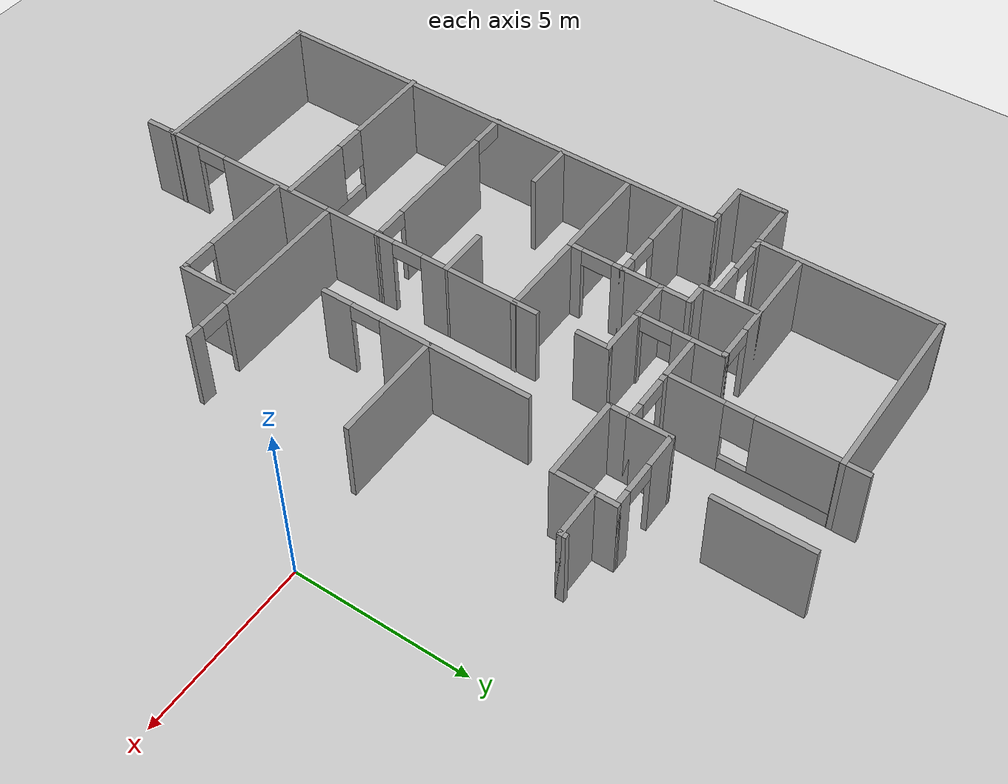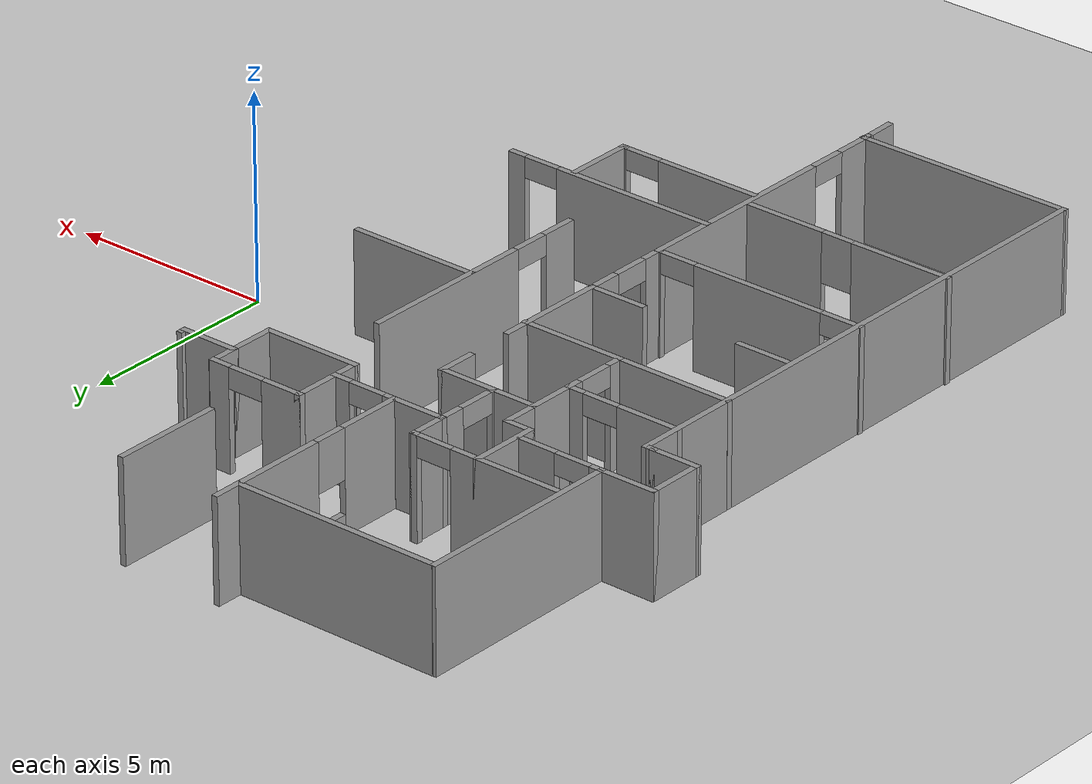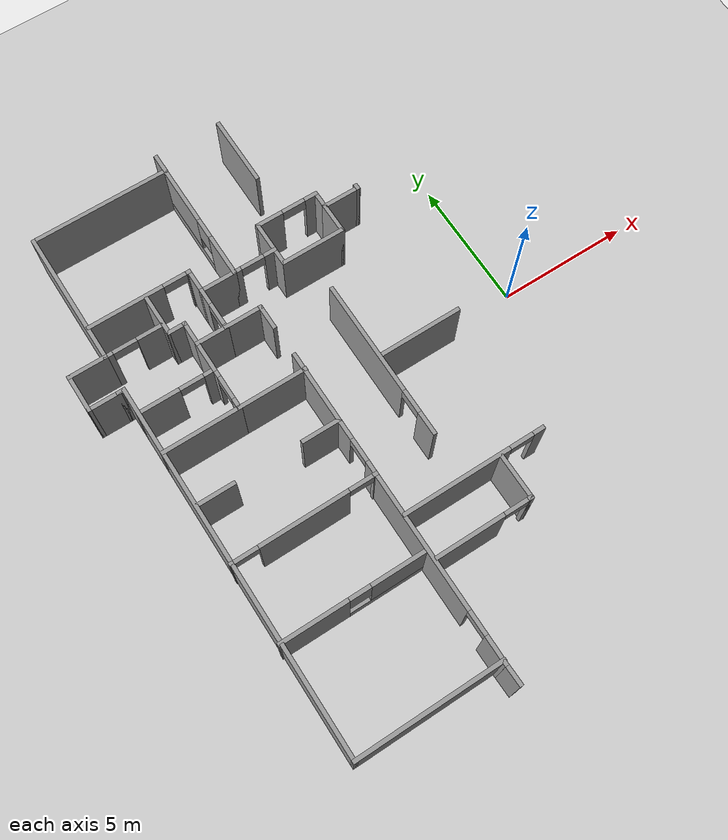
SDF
<sdf version="1.6">
 <world name="default">
  <model name="ground_plane">
   <static>1</static>
   <link name="link">
    <collision name="collision">
     <geometry><plane><normal>0 0 1</normal><size>100 100</size></plane></geometry>
     <surface><friction><ode><mu>100</mu><mu2>50</mu2></ode></friction></surface>
    </collision>
    <visual name="visual">
     <cast_shadows>0</cast_shadows>
     <geometry><plane><normal>0 0 1</normal><size>100 100</size></plane></geometry>
     <material>
      <script><uri>file://media/materials/scripts/gazebo.material</uri><name>Gazebo/Grey</name></script>
     </material>
    </visual>
   </link>
  </model>
  <model name="office02">
   <pose>-0.075105 -0.58893 0 0 -0 0</pose>
   <link name="Wall_0">
    <collision name="Wall_0_Collision">
     <geometry><box><size>5.25 0.15 2.5</size></box></geometry>
     <pose>0 0 1.25 0 -0 0</pose>
    </collision>
    <visual name="Wall_0_Visual">
     <pose>0 0 1.25 0 -0 0</pose>
     <geometry><box><size>5.25 0.15 2.5</size></box></geometry>
     <material>
      <script><uri>file://media/materials/scripts/gazebo.material</uri><name>Gazebo/Grey</name></script>
      <ambient>1 1 1 1</ambient>
     </material>
     <meta><layer>0</layer></meta>
    </visual>
    <pose>-13.3071 7.70371 0 0 -0 -1.5708</pose>
   </link>
   <link name="Wall_1">
    <collision name="Wall_1_Collision">
     <geometry><box><size>1.5 0.15 2.5</size></box></geometry>
     <pose>0 0 1.25 0 -0 0</pose>
    </collision>
    <visual name="Wall_1_Visual">
     <pose>0 0 1.25 0 -0 0</pose>
     <geometry><box><size>1.5 0.15 2.5</size></box></geometry>
     <material>
      <script><uri>file://media/materials/scripts/gazebo.material</uri><name>Gazebo/Grey</name></script>
      <ambient>1 1 1 1</ambient>
     </material>
     <meta><layer>0</layer></meta>
    </visual>
    <pose>-13.9821 5.15371 0 0 -0 3.14159</pose>
   </link>
   <link name="Wall_2">
    <collision name="Wall_2_Collision">
     <geometry><box><size>1.5 0.15 2.5</size></box></geometry>
     <pose>0 0 1.25 0 -0 0</pose>
    </collision>
    <visual name="Wall_2_Visual">
     <pose>0 0 1.25 0 -0 0</pose>
     <geometry><box><size>1.5 0.15 2.5</size></box></geometry>
     <material>
      <script><uri>file://media/materials/scripts/gazebo.material</uri><name>Gazebo/Grey</name></script>
      <ambient>1 1 1 1</ambient>
     </material>
     <meta><layer>0</layer></meta>
    </visual>
    <pose>-14.6571 4.47871 0 0 -0 -1.5708</pose>
   </link>
   <link name="Wall_21">
    <collision name="Wall_21_Collision">
     <geometry><box><size>0.801164 0.15 2.5</size></box></geometry>
     <pose>0 0 1.25 0 -0 0</pose>
    </collision>
    <visual name="Wall_21_Visual">
     <pose>0 0 1.25 0 -0 0</pose>
     <geometry><box><size>0.801164 0.15 2.5</size></box></geometry>
     <material>
      <script><uri>file://media/materials/scripts/gazebo.material</uri><name>Gazebo/Grey</name></script>
      <ambient>1 1 1 1</ambient>
     </material>
     <meta><layer>0</layer></meta>
    </visual>
    <pose>-8.11981 10.5707 0 0 -0 -1.5708</pose>
   </link>
   <link name="Wall_22">
    <collision name="Wall_22_Collision">
     <geometry><box><size>5.25 0.15 2.5</size></box></geometry>
     <pose>0 0 1.25 0 -0 0</pose>
    </collision>
    <visual name="Wall_22_Visual">
     <pose>0 0 1.25 0 -0 0</pose>
     <geometry><box><size>5.25 0.15 2.5</size></box></geometry>
     <material>
      <script><uri>file://media/materials/scripts/gazebo.material</uri><name>Gazebo/Grey</name></script>
      <ambient>1 1 1 1</ambient>
     </material>
     <meta><layer>0</layer></meta>
    </visual>
    <pose>-10.6698 10.2604 0 0 -0 3.14159</pose>
   </link>
   <link name="Wall_232">
    <pose>-7.32824 5.53282 0 0 -0 0</pose>
    <visual name="Wall_232_Visual_0">
     <pose>-0.707202 0 1.25 0 -0 0</pose>
     <geometry><box><size>0.335596 0.15 2.5</size></box></geometry>
     <material>
      <script><uri>file://media/materials/scripts/gazebo.material</uri><name>Gazebo/Grey</name></script>
      <ambient>1 1 1 1</ambient>
     </material>
     <meta><layer>0</layer></meta>
    </visual>
    <collision name="Wall_232_Collision_0">
     <geometry><box><size>0.335596 0.15 2.5</size></box></geometry>
     <pose>-0.707202 0 1.25 0 -0 0</pose>
    </collision>
    <visual name="Wall_232_Visual_1">
     <pose>0.617798 0 1.25 0 -0 0</pose>
     <geometry><box><size>0.514404 0.15 2.5</size></box></geometry>
     <material>
      <script><uri>file://media/materials/scripts/gazebo.material</uri><name>Gazebo/Grey</name></script>
      <ambient>1 1 1 1</ambient>
     </material>
     <meta><layer>0</layer></meta>
    </visual>
    <collision name="Wall_232_Collision_1">
     <geometry><box><size>0.514404 0.15 2.5</size></box></geometry>
     <pose>0.617798 0 1.25 0 -0 0</pose>
    </collision>
    <visual name="Wall_232_Visual_2">
     <pose>-0.089404 0 2.25 0 -0 0</pose>
     <geometry><box><size>0.9 0.15 0.5</size></box></geometry>
     <material>
      <script><uri>file://media/materials/scripts/gazebo.material</uri><name>Gazebo/Grey</name></script>
      <ambient>1 1 1 1</ambient>
     </material>
     <meta><layer>0</layer></meta>
    </visual>
    <collision name="Wall_232_Collision_2">
     <geometry><box><size>0.9 0.15 0.5</size></box></geometry>
     <pose>-0.089404 0 2.25 0 -0 0</pose>
    </collision>
   </link>
   <link name="Wall_233">
    <collision name="Wall_233_Collision">
     <geometry><box><size>0.75 0.15 2.5</size></box></geometry>
     <pose>0 0 1.25 0 -0 0</pose>
    </collision>
    <visual name="Wall_233_Visual">
     <pose>0 0 1.25 0 -0 0</pose>
     <geometry><box><size>0.75 0.15 2.5</size></box></geometry>
     <material>
      <script><uri>file://media/materials/scripts/gazebo.material</uri><name>Gazebo/Grey</name></script>
      <ambient>1 1 1 1</ambient>
     </material>
     <meta><layer>0</layer></meta>
    </visual>
    <pose>-6.52824 5.23282 0 0 -0 -1.5708</pose>
   </link>
   <link name="Wall_234">
    <collision name="Wall_234_Collision">
     <geometry><box><size>2.5 0.15 2.5</size></box></geometry>
     <pose>0 0 1.25 0 -0 0</pose>
    </collision>
    <visual name="Wall_234_Visual">
     <pose>0 0 1.25 0 -0 0</pose>
     <geometry><box><size>2.5 0.15 2.5</size></box></geometry>
     <material>
      <script><uri>file://media/materials/scripts/gazebo.material</uri><name>Gazebo/Grey</name></script>
      <ambient>1 1 1 1</ambient>
     </material>
     <meta><layer>0</layer></meta>
    </visual>
    <pose>-5.35324 4.93282 0 0 -0 0</pose>
   </link>
   <link name="Wall_235">
    <collision name="Wall_235_Collision">
     <geometry><box><size>1.25 0.15 2.5</size></box></geometry>
     <pose>0 0 1.25 0 -0 0</pose>
    </collision>
    <visual name="Wall_235_Visual">
     <pose>0 0 1.25 0 -0 0</pose>
     <geometry><box><size>1.25 0.15 2.5</size></box></geometry>
     <material>
      <script><uri>file://media/materials/scripts/gazebo.material</uri><name>Gazebo/Grey</name></script>
      <ambient>1 1 1 1</ambient>
     </material>
     <meta><layer>0</layer></meta>
    </visual>
    <pose>-4.17824 5.48282 0 0 -0 1.5708</pose>
   </link>
   <link name="Wall_236">
    <collision name="Wall_236_Collision">
     <geometry><box><size>1.5 0.15 2.5</size></box></geometry>
     <pose>0 0 1.25 0 -0 0</pose>
    </collision>
    <visual name="Wall_236_Visual">
     <pose>0 0 1.25 0 -0 0</pose>
     <geometry><box><size>1.5 0.15 2.5</size></box></geometry>
     <material>
      <script><uri>file://media/materials/scripts/gazebo.material</uri><name>Gazebo/Grey</name></script>
      <ambient>1 1 1 1</ambient>
     </material>
     <meta><layer>0</layer></meta>
    </visual>
    <pose>-3.50324 6.03282 0 0 -0 0</pose>
   </link>
   <link name="Wall_237">
    <collision name="Wall_237_Collision">
     <geometry><box><size>0.25 0.15 2.5</size></box></geometry>
     <pose>0 0 1.25 0 -0 0</pose>
    </collision>
    <visual name="Wall_237_Visual">
     <pose>0 0 1.25 0 -0 0</pose>
     <geometry><box><size>0.25 0.15 2.5</size></box></geometry>
     <material>
      <script><uri>file://media/materials/scripts/gazebo.material</uri><name>Gazebo/Grey</name></script>
      <ambient>1 1 1 1</ambient>
     </material>
     <meta><layer>0</layer></meta>
    </visual>
    <pose>-2.82824 6.08282 0 0 -0 1.5708</pose>
   </link>
   <link name="Wall_27">
    <pose>-11.3335 6.38282 0 0 -0 0</pose>
    <visual name="Wall_27_Visual_0">
     <pose>-0.546613 0 1.25 0 -0 0</pose>
     <geometry><box><size>2.90677 0.15 2.5</size></box></geometry>
     <material>
      <script><uri>file://media/materials/scripts/gazebo.material</uri><name>Gazebo/Grey</name></script>
      <ambient>1 1 1 1</ambient>
     </material>
     <meta><layer>0</layer></meta>
    </visual>
    <collision name="Wall_27_Collision_0">
     <geometry><box><size>2.90677 0.15 2.5</size></box></geometry>
     <pose>-0.546613 0 1.25 0 -0 0</pose>
    </collision>
    <visual name="Wall_27_Visual_1">
     <pose>1.90339 0 1.25 0 -0 0</pose>
     <geometry><box><size>0.193226 0.15 2.5</size></box></geometry>
     <material>
      <script><uri>file://media/materials/scripts/gazebo.material</uri><name>Gazebo/Grey</name></script>
      <ambient>1 1 1 1</ambient>
     </material>
     <meta><layer>0</layer></meta>
    </visual>
    <collision name="Wall_27_Collision_1">
     <geometry><box><size>0.193226 0.15 2.5</size></box></geometry>
     <pose>1.90339 0 1.25 0 -0 0</pose>
    </collision>
    <visual name="Wall_27_Visual_2">
     <pose>1.35677 0 2.25 0 -0 0</pose>
     <geometry><box><size>0.9 0.15 0.5</size></box></geometry>
     <material>
      <script><uri>file://media/materials/scripts/gazebo.material</uri><name>Gazebo/Grey</name></script>
      <ambient>1 1 1 1</ambient>
     </material>
     <meta><layer>0</layer></meta>
    </visual>
    <collision name="Wall_27_Collision_2">
     <geometry><box><size>0.9 0.15 0.5</size></box></geometry>
     <pose>1.35677 0 2.25 0 -0 0</pose>
    </collision>
   </link>
   <link name="Wall_28">
    <collision name="Wall_28_Collision">
     <geometry><box><size>1 0.15 2.5</size></box></geometry>
     <pose>0 0 1.25 0 -0 0</pose>
    </collision>
    <visual name="Wall_28_Visual">
     <pose>0 0 1.25 0 -0 0</pose>
     <geometry><box><size>1 0.15 2.5</size></box></geometry>
     <material>
      <script><uri>file://media/materials/scripts/gazebo.material</uri><name>Gazebo/Grey</name></script>
      <ambient>1 1 1 1</ambient>
     </material>
     <meta><layer>0</layer></meta>
    </visual>
    <pose>-9.40845 5.95782 0 0 -0 -1.5708</pose>
   </link>
   <link name="Wall_283">
    <collision name="Wall_283_Collision">
     <geometry><box><size>1.25 0.15 2.5</size></box></geometry>
     <pose>0 0 1.25 0 -0 0</pose>
    </collision>
    <visual name="Wall_283_Visual">
     <pose>0 0 1.25 0 -0 0</pose>
     <geometry><box><size>1.25 0.15 2.5</size></box></geometry>
     <material>
      <script><uri>file://media/materials/scripts/gazebo.material</uri><name>Gazebo/Grey</name></script>
      <ambient>1 1 1 1</ambient>
     </material>
     <meta><layer>0</layer></meta>
    </visual>
    <pose>-6.52824 6.08282 0 0 -0 1.5708</pose>
   </link>
   <link name="Wall_284">
    <pose>-5.35324 6.63282 0 0 -0 0</pose>
    <visual name="Wall_284_Visual_0">
     <pose>-0.721303 0 1.25 0 -0 0</pose>
     <geometry><box><size>1.0574 0.15 2.5</size></box></geometry>
     <material>
      <script><uri>file://media/materials/scripts/gazebo.material</uri><name>Gazebo/Grey</name></script>
      <ambient>1 1 1 1</ambient>
     </material>
     <meta><layer>0</layer></meta>
    </visual>
    <collision name="Wall_284_Collision_0">
     <geometry><box><size>1.0574 0.15 2.5</size></box></geometry>
     <pose>-0.721303 0 1.25 0 -0 0</pose>
    </collision>
    <visual name="Wall_284_Visual_1">
     <pose>0.978697 0 1.25 0 -0 0</pose>
     <geometry><box><size>0.542605 0.15 2.5</size></box></geometry>
     <material>
      <script><uri>file://media/materials/scripts/gazebo.material</uri><name>Gazebo/Grey</name></script>
      <ambient>1 1 1 1</ambient>
     </material>
     <meta><layer>0</layer></meta>
    </visual>
    <collision name="Wall_284_Collision_1">
     <geometry><box><size>0.542605 0.15 2.5</size></box></geometry>
     <pose>0.978697 0 1.25 0 -0 0</pose>
    </collision>
    <visual name="Wall_284_Visual_2">
     <pose>0.257395 0 2.25 0 -0 0</pose>
     <geometry><box><size>0.9 0.15 0.5</size></box></geometry>
     <material>
      <script><uri>file://media/materials/scripts/gazebo.material</uri><name>Gazebo/Grey</name></script>
      <ambient>1 1 1 1</ambient>
     </material>
     <meta><layer>0</layer></meta>
    </visual>
    <collision name="Wall_284_Collision_2">
     <geometry><box><size>0.9 0.15 0.5</size></box></geometry>
     <pose>0.257395 0 2.25 0 -0 0</pose>
    </collision>
   </link>
   <link name="Wall_285">
    <collision name="Wall_285_Collision">
     <geometry><box><size>0.75 0.15 2.5</size></box></geometry>
     <pose>0 0 1.25 0 -0 0</pose>
    </collision>
    <visual name="Wall_285_Visual">
     <pose>0 0 1.25 0 -0 0</pose>
     <geometry><box><size>0.75 0.15 2.5</size></box></geometry>
     <material>
      <script><uri>file://media/materials/scripts/gazebo.material</uri><name>Gazebo/Grey</name></script>
      <ambient>1 1 1 1</ambient>
     </material>
     <meta><layer>0</layer></meta>
    </visual>
    <pose>-4.17824 6.33282 0 0 -0 -1.5708</pose>
   </link>
   <link name="Wall_287">
    <collision name="Wall_287_Collision">
     <geometry><box><size>2.75 0.15 2.5</size></box></geometry>
     <pose>0 0 1.25 0 -0 0</pose>
    </collision>
    <visual name="Wall_287_Visual">
     <pose>0 0 1.25 0 -0 0</pose>
     <geometry><box><size>2.75 0.15 2.5</size></box></geometry>
     <material>
      <script><uri>file://media/materials/scripts/gazebo.material</uri><name>Gazebo/Grey</name></script>
      <ambient>1 1 1 1</ambient>
     </material>
     <meta><layer>0</layer></meta>
    </visual>
    <pose>-5.57076 9.59432 0 0 -0 -1.5708</pose>
   </link>
   <link name="Wall_29">
    <collision name="Wall_29_Collision">
     <geometry><box><size>1.40695 0.15 2.5</size></box></geometry>
     <pose>0 0 1.25 0 -0 0</pose>
    </collision>
    <visual name="Wall_29_Visual">
     <pose>0 0 1.25 0 -0 0</pose>
     <geometry><box><size>1.40695 0.15 2.5</size></box></geometry>
     <material>
      <script><uri>file://media/materials/scripts/gazebo.material</uri><name>Gazebo/Grey</name></script>
      <ambient>1 1 1 1</ambient>
     </material>
     <meta><layer>0</layer></meta>
    </visual>
    <pose>-8.77998 5.53282 0 0 -0 0</pose>
   </link>
   <link name="Wall_290">
    <pose>-5.67673 0.155497 0 0 -0 -1.5708</pose>
    <visual name="Wall_290_Visual_0">
     <pose>-0.907056 0 1.25 0 -0 0</pose>
     <geometry><box><size>4.43589 0.15 2.5</size></box></geometry>
     <material>
      <script><uri>file://media/materials/scripts/gazebo.material</uri><name>Gazebo/Grey</name></script>
      <ambient>1 1 1 1</ambient>
     </material>
     <meta><layer>0</layer></meta>
    </visual>
    <collision name="Wall_290_Collision_0">
     <geometry><box><size>4.43589 0.15 2.5</size></box></geometry>
     <pose>-0.907056 0 1.25 0 -0 0</pose>
    </collision>
    <visual name="Wall_290_Visual_1">
     <pose>2.66794 0 1.25 0 -0 0</pose>
     <geometry><box><size>0.914112 0.15 2.5</size></box></geometry>
     <material>
      <script><uri>file://media/materials/scripts/gazebo.material</uri><name>Gazebo/Grey</name></script>
      <ambient>1 1 1 1</ambient>
     </material>
     <meta><layer>0</layer></meta>
    </visual>
    <collision name="Wall_290_Collision_1">
     <geometry><box><size>0.914112 0.15 2.5</size></box></geometry>
     <pose>2.66794 0 1.25 0 -0 0</pose>
    </collision>
    <visual name="Wall_290_Visual_2">
     <pose>1.76089 0 2.25 0 -0 0</pose>
     <geometry><box><size>0.9 0.15 0.5</size></box></geometry>
     <material>
      <script><uri>file://media/materials/scripts/gazebo.material</uri><name>Gazebo/Grey</name></script>
      <ambient>1 1 1 1</ambient>
     </material>
     <meta><layer>0</layer></meta>
    </visual>
    <collision name="Wall_290_Collision_2">
     <geometry><box><size>0.9 0.15 0.5</size></box></geometry>
     <pose>1.76089 0 2.25 0 -0 0</pose>
    </collision>
   </link>
   <link name="Wall_3">
    <collision name="Wall_3_Collision">
     <geometry><box><size>1.25 0.15 2.5</size></box></geometry>
     <pose>0 0 1.25 0 -0 0</pose>
    </collision>
    <visual name="Wall_3_Visual">
     <pose>0 0 1.25 0 -0 0</pose>
     <geometry><box><size>1.25 0.15 2.5</size></box></geometry>
     <material>
      <script><uri>file://media/materials/scripts/gazebo.material</uri><name>Gazebo/Grey</name></script>
      <ambient>1 1 1 1</ambient>
     </material>
     <meta><layer>0</layer></meta>
    </visual>
    <pose>-14.1071 3.80371 0 0 -0 0</pose>
   </link>
   <link name="Wall_30">
    <pose>-8.12824 7.83282 0 0 -0 1.5708</pose>
    <visual name="Wall_30_Visual_0">
     <pose>-1.53214 0 1.25 0 -0 0</pose>
     <geometry><box><size>1.68571 0.15 2.5</size></box></geometry>
     <material>
      <script><uri>file://media/materials/scripts/gazebo.material</uri><name>Gazebo/Grey</name></script>
      <ambient>1 1 1 1</ambient>
     </material>
     <meta><layer>0</layer></meta>
    </visual>
    <collision name="Wall_30_Collision_0">
     <geometry><box><size>1.68571 0.15 2.5</size></box></geometry>
     <pose>-1.53214 0 1.25 0 -0 0</pose>
    </collision>
    <visual name="Wall_30_Visual_1">
     <pose>0.842857 0 0.25 0 -0 0</pose>
     <geometry><box><size>3.06429 0.15 0.5</size></box></geometry>
     <material>
      <script><uri>file://media/materials/scripts/gazebo.material</uri><name>Gazebo/Grey</name></script>
      <ambient>1 1 1 1</ambient>
     </material>
     <meta><layer>0</layer></meta>
    </visual>
    <collision name="Wall_30_Collision_1">
     <geometry><box><size>3.06429 0.15 0.5</size></box></geometry>
     <pose>0.842857 0 0.25 0 -0 0</pose>
    </collision>
    <visual name="Wall_30_Visual_2">
     <pose>1.24286 0 1.5 0 -0 0</pose>
     <geometry><box><size>2.26429 0.15 2</size></box></geometry>
     <material>
      <script><uri>file://media/materials/scripts/gazebo.material</uri><name>Gazebo/Grey</name></script>
      <ambient>1 1 1 1</ambient>
     </material>
     <meta><layer>0</layer></meta>
    </visual>
    <collision name="Wall_30_Collision_2">
     <geometry><box><size>2.26429 0.15 2</size></box></geometry>
     <pose>1.24286 0 1.5 0 -0 0</pose>
    </collision>
    <visual name="Wall_30_Visual_3">
     <pose>-0.289286 0 1.9 0 -0 0</pose>
     <geometry><box><size>0.8 0.15 1.2</size></box></geometry>
     <material>
      <script><uri>file://media/materials/scripts/gazebo.material</uri><name>Gazebo/Grey</name></script>
      <ambient>1 1 1 1</ambient>
     </material>
     <meta><layer>0</layer></meta>
    </visual>
    <collision name="Wall_30_Collision_3">
     <geometry><box><size>0.8 0.15 1.2</size></box></geometry>
     <pose>-0.289286 0 1.9 0 -0 0</pose>
    </collision>
   </link>
   <link name="Wall_313">
    <collision name="Wall_313_Collision">
     <geometry><box><size>3.25 0.15 2.5</size></box></geometry>
     <pose>0 0 1.25 0 -0 0</pose>
    </collision>
    <visual name="Wall_313_Visual">
     <pose>0 0 1.25 0 -0 0</pose>
     <geometry><box><size>3.25 0.15 2.5</size></box></geometry>
     <material>
      <script><uri>file://media/materials/scripts/gazebo.material</uri><name>Gazebo/Grey</name></script>
      <ambient>1 1 1 1</ambient>
     </material>
     <meta><layer>0</layer></meta>
    </visual>
    <pose>-4.10851 0.293947 0 0 -0 0</pose>
   </link>
   <link name="Wall_32">
    <pose>-9.40845 4.73282 0 0 -0 -1.5708</pose>
    <visual name="Wall_32_Visual_0">
     <pose>-0.548225 0 1.25 0 -0 0</pose>
     <geometry><box><size>0.653549 0.15 2.5</size></box></geometry>
     <material>
      <script><uri>file://media/materials/scripts/gazebo.material</uri><name>Gazebo/Grey</name></script>
      <ambient>1 1 1 1</ambient>
     </material>
     <meta><layer>0</layer></meta>
    </visual>
    <collision name="Wall_32_Collision_0">
     <geometry><box><size>0.653549 0.15 2.5</size></box></geometry>
     <pose>-0.548225 0 1.25 0 -0 0</pose>
    </collision>
    <visual name="Wall_32_Visual_1">
     <pose>0.776775 0 1.25 0 -0 0</pose>
     <geometry><box><size>0.196451 0.15 2.5</size></box></geometry>
     <material>
      <script><uri>file://media/materials/scripts/gazebo.material</uri><name>Gazebo/Grey</name></script>
      <ambient>1 1 1 1</ambient>
     </material>
     <meta><layer>0</layer></meta>
    </visual>
    <collision name="Wall_32_Collision_1">
     <geometry><box><size>0.196451 0.15 2.5</size></box></geometry>
     <pose>0.776775 0 1.25 0 -0 0</pose>
    </collision>
    <visual name="Wall_32_Visual_2">
     <pose>0.228549 0 2.25 0 -0 0</pose>
     <geometry><box><size>0.9 0.15 0.5</size></box></geometry>
     <material>
      <script><uri>file://media/materials/scripts/gazebo.material</uri><name>Gazebo/Grey</name></script>
      <ambient>1 1 1 1</ambient>
     </material>
     <meta><layer>0</layer></meta>
    </visual>
    <collision name="Wall_32_Collision_2">
     <geometry><box><size>0.9 0.15 0.5</size></box></geometry>
     <pose>0.228549 0 2.25 0 -0 0</pose>
    </collision>
   </link>
   <link name="Wall_33">
    <collision name="Wall_33_Collision">
     <geometry><box><size>1.25 0.15 2.5</size></box></geometry>
     <pose>0 0 1.25 0 -0 0</pose>
    </collision>
    <visual name="Wall_33_Visual">
     <pose>0 0 1.25 0 -0 0</pose>
     <geometry><box><size>1.25 0.15 2.5</size></box></geometry>
     <material>
      <script><uri>file://media/materials/scripts/gazebo.material</uri><name>Gazebo/Grey</name></script>
      <ambient>1 1 1 1</ambient>
     </material>
     <meta><layer>0</layer></meta>
    </visual>
    <pose>-9.95845 3.93282 0 0 -0 3.14159</pose>
   </link>
   <link name="Wall_34">
    <collision name="Wall_34_Collision">
     <geometry><box><size>1 0.15 2.5</size></box></geometry>
     <pose>0 0 1.25 0 -0 0</pose>
    </collision>
    <visual name="Wall_34_Visual">
     <pose>0 0 1.25 0 -0 0</pose>
     <geometry><box><size>1 0.15 2.5</size></box></geometry>
     <material>
      <script><uri>file://media/materials/scripts/gazebo.material</uri><name>Gazebo/Grey</name></script>
      <ambient>1 1 1 1</ambient>
     </material>
     <meta><layer>0</layer></meta>
    </visual>
    <pose>-10.5085 4.35782 0 0 -0 1.5708</pose>
   </link>
   <link name="Wall_35">
    <collision name="Wall_35_Collision">
     <geometry><box><size>0.75 0.15 2.5</size></box></geometry>
     <pose>0 0 1.25 0 -0 0</pose>
    </collision>
    <visual name="Wall_35_Visual">
     <pose>0 0 1.25 0 -0 0</pose>
     <geometry><box><size>0.75 0.15 2.5</size></box></geometry>
     <material>
      <script><uri>file://media/materials/scripts/gazebo.material</uri><name>Gazebo/Grey</name></script>
      <ambient>1 1 1 1</ambient>
     </material>
     <meta><layer>0</layer></meta>
    </visual>
    <pose>-10.8085 4.78282 0 0 -0 3.14159</pose>
   </link>
   <link name="Wall_36">
    <collision name="Wall_36_Collision">
     <geometry><box><size>1.75 0.15 2.5</size></box></geometry>
     <pose>0 0 1.25 0 -0 0</pose>
    </collision>
    <visual name="Wall_36_Visual">
     <pose>0 0 1.25 0 -0 0</pose>
     <geometry><box><size>1.75 0.15 2.5</size></box></geometry>
     <material>
      <script><uri>file://media/materials/scripts/gazebo.material</uri><name>Gazebo/Grey</name></script>
      <ambient>1 1 1 1</ambient>
     </material>
     <meta><layer>0</layer></meta>
    </visual>
    <pose>-11.1085 5.58282 0 0 -0 1.5708</pose>
   </link>
   <link name="Wall_38">
    <pose>-12.2571 5.15371 0 0 -0 0</pose>
    <visual name="Wall_38_Visual_0">
     <pose>-0.949946 0 1.25 0 -0 0</pose>
     <geometry><box><size>0.350108 0.15 2.5</size></box></geometry>
     <material>
      <script><uri>file://media/materials/scripts/gazebo.material</uri><name>Gazebo/Grey</name></script>
      <ambient>1 1 1 1</ambient>
     </material>
     <meta><layer>0</layer></meta>
    </visual>
    <collision name="Wall_38_Collision_0">
     <geometry><box><size>0.350108 0.15 2.5</size></box></geometry>
     <pose>-0.949946 0 1.25 0 -0 0</pose>
    </collision>
    <visual name="Wall_38_Visual_1">
     <pose>0.625054 0 1.25 0 -0 0</pose>
     <geometry><box><size>0.999892 0.15 2.5</size></box></geometry>
     <material>
      <script><uri>file://media/materials/scripts/gazebo.material</uri><name>Gazebo/Grey</name></script>
      <ambient>1 1 1 1</ambient>
     </material>
     <meta><layer>0</layer></meta>
    </visual>
    <collision name="Wall_38_Collision_1">
     <geometry><box><size>0.999892 0.15 2.5</size></box></geometry>
     <pose>0.625054 0 1.25 0 -0 0</pose>
    </collision>
    <visual name="Wall_38_Visual_2">
     <pose>-0.324892 0 2.25 0 -0 0</pose>
     <geometry><box><size>0.9 0.15 0.5</size></box></geometry>
     <material>
      <script><uri>file://media/materials/scripts/gazebo.material</uri><name>Gazebo/Grey</name></script>
      <ambient>1 1 1 1</ambient>
     </material>
     <meta><layer>0</layer></meta>
    </visual>
    <collision name="Wall_38_Collision_2">
     <geometry><box><size>0.9 0.15 0.5</size></box></geometry>
     <pose>-0.324892 0 2.25 0 -0 0</pose>
    </collision>
   </link>
   <link name="Wall_4">
    <collision name="Wall_4_Collision">
     <geometry><box><size>0.25 0.15 2.5</size></box></geometry>
     <pose>0 0 1.25 0 -0 0</pose>
    </collision>
    <visual name="Wall_4_Visual">
     <pose>0 0 1.25 0 -0 0</pose>
     <geometry><box><size>0.25 0.15 2.5</size></box></geometry>
     <material>
      <script><uri>file://media/materials/scripts/gazebo.material</uri><name>Gazebo/Grey</name></script>
      <ambient>1 1 1 1</ambient>
     </material>
     <meta><layer>0</layer></meta>
    </visual>
    <pose>-13.5071 3.80371 0 0 -0 0</pose>
   </link>
   <link name="Wall_41">
    <collision name="Wall_41_Collision">
     <geometry><box><size>1.25 0.15 2.5</size></box></geometry>
     <pose>0 0 1.25 0 -0 0</pose>
    </collision>
    <visual name="Wall_41_Visual">
     <pose>0 0 1.25 0 -0 0</pose>
     <geometry><box><size>1.25 0.15 2.5</size></box></geometry>
     <material>
      <script><uri>file://media/materials/scripts/gazebo.material</uri><name>Gazebo/Grey</name></script>
      <ambient>1 1 1 1</ambient>
     </material>
     <meta><layer>0</layer></meta>
    </visual>
    <pose>-10.5085 3.38282 0 0 -0 1.5708</pose>
   </link>
   <link name="Wall_43">
    <pose>-11.9335 2.83282 0 0 -0 3.14159</pose>
    <visual name="Wall_43_Visual_0">
     <pose>-1.25553 0 1.25 0 -0 0</pose>
     <geometry><box><size>0.488944 0.15 2.5</size></box></geometry>
     <material>
      <script><uri>file://media/materials/scripts/gazebo.material</uri><name>Gazebo/Grey</name></script>
      <ambient>1 1 1 1</ambient>
     </material>
     <meta><layer>0</layer></meta>
    </visual>
    <collision name="Wall_43_Collision_0">
     <geometry><box><size>0.488944 0.15 2.5</size></box></geometry>
     <pose>-1.25553 0 1.25 0 -0 0</pose>
    </collision>
    <visual name="Wall_43_Visual_1">
     <pose>0.694472 0 1.25 0 -0 0</pose>
     <geometry><box><size>1.61106 0.15 2.5</size></box></geometry>
     <material>
      <script><uri>file://media/materials/scripts/gazebo.material</uri><name>Gazebo/Grey</name></script>
      <ambient>1 1 1 1</ambient>
     </material>
     <meta><layer>0</layer></meta>
    </visual>
    <collision name="Wall_43_Collision_1">
     <geometry><box><size>1.61106 0.15 2.5</size></box></geometry>
     <pose>0.694472 0 1.25 0 -0 0</pose>
    </collision>
    <visual name="Wall_43_Visual_2">
     <pose>-0.561056 0 2.25 0 -0 0</pose>
     <geometry><box><size>0.9 0.15 0.5</size></box></geometry>
     <material>
      <script><uri>file://media/materials/scripts/gazebo.material</uri><name>Gazebo/Grey</name></script>
      <ambient>1 1 1 1</ambient>
     </material>
     <meta><layer>0</layer></meta>
    </visual>
    <collision name="Wall_43_Collision_2">
     <geometry><box><size>0.9 0.15 0.5</size></box></geometry>
     <pose>-0.561056 0 2.25 0 -0 0</pose>
    </collision>
   </link>
   <link name="Wall_46">
    <pose>-10.5085 2.03282 0 0 -0 -1.5708</pose>
    <visual name="Wall_46_Visual_0">
     <pose>-0.676973 0 1.25 0 -0 0</pose>
     <geometry><box><size>0.396055 0.15 2.5</size></box></geometry>
     <material>
      <script><uri>file://media/materials/scripts/gazebo.material</uri><name>Gazebo/Grey</name></script>
      <ambient>1 1 1 1</ambient>
     </material>
     <meta><layer>0</layer></meta>
    </visual>
    <collision name="Wall_46_Collision_0">
     <geometry><box><size>0.396055 0.15 2.5</size></box></geometry>
     <pose>-0.676973 0 1.25 0 -0 0</pose>
    </collision>
    <visual name="Wall_46_Visual_1">
     <pose>0.648027 0 1.25 0 -0 0</pose>
     <geometry><box><size>0.453945 0.15 2.5</size></box></geometry>
     <material>
      <script><uri>file://media/materials/scripts/gazebo.material</uri><name>Gazebo/Grey</name></script>
      <ambient>1 1 1 1</ambient>
     </material>
     <meta><layer>0</layer></meta>
    </visual>
    <collision name="Wall_46_Collision_1">
     <geometry><box><size>0.453945 0.15 2.5</size></box></geometry>
     <pose>0.648027 0 1.25 0 -0 0</pose>
    </collision>
    <visual name="Wall_46_Visual_2">
     <pose>-0.028945 0 2.25 0 -0 0</pose>
     <geometry><box><size>0.9 0.15 0.5</size></box></geometry>
     <material>
      <script><uri>file://media/materials/scripts/gazebo.material</uri><name>Gazebo/Grey</name></script>
      <ambient>1 1 1 1</ambient>
     </material>
     <meta><layer>0</layer></meta>
    </visual>
    <collision name="Wall_46_Collision_2">
     <geometry><box><size>0.9 0.15 0.5</size></box></geometry>
     <pose>-0.028945 0 2.25 0 -0 0</pose>
    </collision>
   </link>
   <link name="Wall_47">
    <collision name="Wall_47_Collision">
     <geometry><box><size>3 0.15 2.5</size></box></geometry>
     <pose>0 0 1.25 0 -0 0</pose>
    </collision>
    <visual name="Wall_47_Visual">
     <pose>0 0 1.25 0 -0 0</pose>
     <geometry><box><size>3 0.15 2.5</size></box></geometry>
     <material>
      <script><uri>file://media/materials/scripts/gazebo.material</uri><name>Gazebo/Grey</name></script>
      <ambient>1 1 1 1</ambient>
     </material>
     <meta><layer>0</layer></meta>
    </visual>
    <pose>-11.9335 1.23282 0 0 -0 3.14159</pose>
   </link>
   <link name="Wall_49">
    <collision name="Wall_49_Collision">
     <geometry><box><size>1.5 0.15 2.5</size></box></geometry>
     <pose>0 0 1.25 0 -0 0</pose>
    </collision>
    <visual name="Wall_49_Visual">
     <pose>0 0 1.25 0 -0 0</pose>
     <geometry><box><size>1.5 0.15 2.5</size></box></geometry>
     <material>
      <script><uri>file://media/materials/scripts/gazebo.material</uri><name>Gazebo/Grey</name></script>
      <ambient>1 1 1 1</ambient>
     </material>
     <meta><layer>0</layer></meta>
    </visual>
    <pose>-8.73345 3.93282 0 0 -0 0</pose>
   </link>
   <link name="Wall_5">
    <collision name="Wall_5_Collision">
     <geometry><box><size>0.25 0.15 2.5</size></box></geometry>
     <pose>0 0 1.25 0 -0 0</pose>
    </collision>
    <visual name="Wall_5_Visual">
     <pose>0 0 1.25 0 -0 0</pose>
     <geometry><box><size>0.25 0.15 2.5</size></box></geometry>
     <material>
      <script><uri>file://media/materials/scripts/gazebo.material</uri><name>Gazebo/Grey</name></script>
      <ambient>1 1 1 1</ambient>
     </material>
     <meta><layer>0</layer></meta>
    </visual>
    <pose>-13.4071 3.80371 0 0 -0 0</pose>
   </link>
   <link name="Wall_50">
    <collision name="Wall_50_Collision">
     <geometry><box><size>1 0.15 2.5</size></box></geometry>
     <pose>0 0 1.25 0 -0 0</pose>
    </collision>
    <visual name="Wall_50_Visual">
     <pose>0 0 1.25 0 -0 0</pose>
     <geometry><box><size>1 0.15 2.5</size></box></geometry>
     <material>
      <script><uri>file://media/materials/scripts/gazebo.material</uri><name>Gazebo/Grey</name></script>
      <ambient>1 1 1 1</ambient>
     </material>
     <meta><layer>0</layer></meta>
    </visual>
    <pose>-8.05845 3.50782 0 0 -0 -1.5708</pose>
   </link>
   <link name="Wall_52">
    <collision name="Wall_52_Collision">
     <geometry><box><size>2.66283 0.15 2.5</size></box></geometry>
     <pose>0 0 1.25 0 -0 0</pose>
    </collision>
    <visual name="Wall_52_Visual">
     <pose>0 0 1.25 0 -0 0</pose>
     <geometry><box><size>2.66283 0.15 2.5</size></box></geometry>
     <material>
      <script><uri>file://media/materials/scripts/gazebo.material</uri><name>Gazebo/Grey</name></script>
      <ambient>1 1 1 1</ambient>
     </material>
     <meta><layer>0</layer></meta>
    </visual>
    <pose>-9.25204 1.23282 0 0 -0 0</pose>
   </link>
   <link name="Wall_53">
    <collision name="Wall_53_Collision">
     <geometry><box><size>0.75 0.15 2.5</size></box></geometry>
     <pose>0 0 1.25 0 -0 0</pose>
    </collision>
    <visual name="Wall_53_Visual">
     <pose>0 0 1.25 0 -0 0</pose>
     <geometry><box><size>0.75 0.15 2.5</size></box></geometry>
     <material>
      <script><uri>file://media/materials/scripts/gazebo.material</uri><name>Gazebo/Grey</name></script>
      <ambient>1 1 1 1</ambient>
     </material>
     <meta><layer>0</layer></meta>
    </visual>
    <pose>-8.01888 1.53282 0 0 -0 1.5708</pose>
   </link>
   <link name="Wall_55">
    <collision name="Wall_55_Collision">
     <geometry><box><size>1.5 0.15 2.5</size></box></geometry>
     <pose>0 0 1.25 0 -0 0</pose>
    </collision>
    <visual name="Wall_55_Visual">
     <pose>0 0 1.25 0 -0 0</pose>
     <geometry><box><size>1.5 0.15 2.5</size></box></geometry>
     <material>
      <script><uri>file://media/materials/scripts/gazebo.material</uri><name>Gazebo/Grey</name></script>
      <ambient>1 1 1 1</ambient>
     </material>
     <meta><layer>0</layer></meta>
    </visual>
    <pose>-12.6547 -0.870868 0 0 -0 0</pose>
   </link>
   <link name="Wall_57">
    <collision name="Wall_57_Collision">
     <geometry><box><size>2.25 0.15 2.5</size></box></geometry>
     <pose>0 0 1.25 0 -0 0</pose>
    </collision>
    <visual name="Wall_57_Visual">
     <pose>0 0 1.25 0 -0 0</pose>
     <geometry><box><size>2.25 0.15 2.5</size></box></geometry>
     <material>
      <script><uri>file://media/materials/scripts/gazebo.material</uri><name>Gazebo/Grey</name></script>
      <ambient>1 1 1 1</ambient>
     </material>
     <meta><layer>0</layer></meta>
    </visual>
    <pose>-8.01888 0.182822 0 0 -0 -1.5708</pose>
   </link>
   <link name="Wall_58">
    <collision name="Wall_58_Collision">
     <geometry><box><size>1.5 0.15 2.5</size></box></geometry>
     <pose>0 0 1.25 0 -0 0</pose>
    </collision>
    <visual name="Wall_58_Visual">
     <pose>0 0 1.25 0 -0 0</pose>
     <geometry><box><size>1.5 0.15 2.5</size></box></geometry>
     <material>
      <script><uri>file://media/materials/scripts/gazebo.material</uri><name>Gazebo/Grey</name></script>
      <ambient>1 1 1 1</ambient>
     </material>
     <meta><layer>0</layer></meta>
    </visual>
    <pose>-8.69388 -0.867178 0 0 -0 3.14159</pose>
   </link>
   <link name="Wall_6">
    <collision name="Wall_6_Collision">
     <geometry><box><size>14 0.15 2.5</size></box></geometry>
     <pose>0 0 1.25 0 -0 0</pose>
    </collision>
    <visual name="Wall_6_Visual">
     <pose>0 0 1.25 0 -0 0</pose>
     <geometry><box><size>14 0.15 2.5</size></box></geometry>
     <material>
      <script><uri>file://media/materials/scripts/gazebo.material</uri><name>Gazebo/Grey</name></script>
      <ambient>1 1 1 1</ambient>
     </material>
     <meta><layer>0</layer></meta>
    </visual>
    <pose>-13.3571 -3.12129 0 0 -0 -1.5708</pose>
   </link>
   <link name="Wall_60">
    <pose>-10.6981 -3.05436 0 0 -0 0.003767</pose>
    <visual name="Wall_60_Visual_0">
     <pose>-2.67914 0 1.25 0 -0 0</pose>
     <geometry><box><size>0.162109 0.15 2.5</size></box></geometry>
     <material>
      <script><uri>file://media/materials/scripts/gazebo.material</uri><name>Gazebo/Grey</name></script>
      <ambient>1 1 1 1</ambient>
     </material>
     <meta><layer>0</layer></meta>
    </visual>
    <collision name="Wall_60_Collision_0">
     <geometry><box><size>0.162109 0.15 2.5</size></box></geometry>
     <pose>-2.67914 0 1.25 0 -0 0</pose>
    </collision>
    <visual name="Wall_60_Visual_1">
     <pose>-0.013301 0 1.25 0 -0 0</pose>
     <geometry><box><size>3.36956 0.15 2.5</size></box></geometry>
     <material>
      <script><uri>file://media/materials/scripts/gazebo.material</uri><name>Gazebo/Grey</name></script>
      <ambient>1 1 1 1</ambient>
     </material>
     <meta><layer>0</layer></meta>
    </visual>
    <collision name="Wall_60_Collision_1">
     <geometry><box><size>3.36956 0.15 2.5</size></box></geometry>
     <pose>-0.013301 0 1.25 0 -0 0</pose>
    </collision>
    <visual name="Wall_60_Visual_2">
     <pose>2.66583 0 1.25 0 -0 0</pose>
     <geometry><box><size>0.18871 0.15 2.5</size></box></geometry>
     <material>
      <script><uri>file://media/materials/scripts/gazebo.material</uri><name>Gazebo/Grey</name></script>
      <ambient>1 1 1 1</ambient>
     </material>
     <meta><layer>0</layer></meta>
    </visual>
    <collision name="Wall_60_Collision_2">
     <geometry><box><size>0.18871 0.15 2.5</size></box></geometry>
     <pose>2.66583 0 1.25 0 -0 0</pose>
    </collision>
    <visual name="Wall_60_Visual_3">
     <pose>-2.14808 0 2.25 0 -0 0</pose>
     <geometry><box><size>0.9 0.15 0.5</size></box></geometry>
     <material>
      <script><uri>file://media/materials/scripts/gazebo.material</uri><name>Gazebo/Grey</name></script>
      <ambient>1 1 1 1</ambient>
     </material>
     <meta><layer>0</layer></meta>
    </visual>
    <collision name="Wall_60_Collision_3">
     <geometry><box><size>0.9 0.15 0.5</size></box></geometry>
     <pose>-2.14808 0 2.25 0 -0 0</pose>
    </collision>
    <visual name="Wall_60_Visual_4">
     <pose>2.12148 0 2.25 0 -0 0</pose>
     <geometry><box><size>0.9 0.15 0.5</size></box></geometry>
     <material>
      <script><uri>file://media/materials/scripts/gazebo.material</uri><name>Gazebo/Grey</name></script>
      <ambient>1 1 1 1</ambient>
     </material>
     <meta><layer>0</layer></meta>
    </visual>
    <collision name="Wall_60_Collision_4">
     <geometry><box><size>0.9 0.15 0.5</size></box></geometry>
     <pose>2.12148 0 2.25 0 -0 0</pose>
    </collision>
   </link>
   <link name="Wall_61">
    <pose>-8.01592 -1.95571 0 0 -0 1.57351</pose>
    <visual name="Wall_61_Visual_0">
     <pose>-0.874396 0 1.25 0 -0 0</pose>
     <geometry><box><size>0.578281 0.15 2.5</size></box></geometry>
     <material>
      <script><uri>file://media/materials/scripts/gazebo.material</uri><name>Gazebo/Grey</name></script>
      <ambient>1 1 1 1</ambient>
     </material>
     <meta><layer>0</layer></meta>
    </visual>
    <collision name="Wall_61_Collision_0">
     <geometry><box><size>0.578281 0.15 2.5</size></box></geometry>
     <pose>-0.874396 0 1.25 0 -0 0</pose>
    </collision>
    <visual name="Wall_61_Visual_1">
     <pose>0.73914 0 1.25 0 -0 0</pose>
     <geometry><box><size>0.848792 0.15 2.5</size></box></geometry>
     <material>
      <script><uri>file://media/materials/scripts/gazebo.material</uri><name>Gazebo/Grey</name></script>
      <ambient>1 1 1 1</ambient>
     </material>
     <meta><layer>0</layer></meta>
    </visual>
    <collision name="Wall_61_Collision_1">
     <geometry><box><size>0.848792 0.15 2.5</size></box></geometry>
     <pose>0.73914 0 1.25 0 -0 0</pose>
    </collision>
    <visual name="Wall_61_Visual_2">
     <pose>-0.135255 0 2.25 0 -0 0</pose>
     <geometry><box><size>0.9 0.15 0.5</size></box></geometry>
     <material>
      <script><uri>file://media/materials/scripts/gazebo.material</uri><name>Gazebo/Grey</name></script>
      <ambient>1 1 1 1</ambient>
     </material>
     <meta><layer>0</layer></meta>
    </visual>
    <collision name="Wall_61_Collision_2">
     <geometry><box><size>0.9 0.15 0.5</size></box></geometry>
     <pose>-0.135255 0 2.25 0 -0 0</pose>
    </collision>
   </link>
   <link name="Wall_7">
    <collision name="Wall_7_Collision">
     <geometry><box><size>5.513 0.15 2.5</size></box></geometry>
     <pose>0 0 1.25 0 -0 0</pose>
    </collision>
    <visual name="Wall_7_Visual">
     <pose>0 0 1.25 0 -0 0</pose>
     <geometry><box><size>5.513 0.15 2.5</size></box></geometry>
     <material>
      <script><uri>file://media/materials/scripts/gazebo.material</uri><name>Gazebo/Grey</name></script>
      <ambient>1 1 1 1</ambient>
     </material>
     <meta><layer>0</layer></meta>
    </visual>
    <pose>-10.6756 -10.0362 0 0 -0 0.003772</pose>
   </link>
   <link name="Wall_74">
    <pose>-8.01297 -6.59424 0 0 -0 -1.5708</pose>
    <visual name="Wall_74_Visual_0">
     <pose>-0.989784 0 1.25 0 -0 0</pose>
     <geometry><box><size>5.27043 0.15 2.5</size></box></geometry>
     <material>
      <script><uri>file://media/materials/scripts/gazebo.material</uri><name>Gazebo/Grey</name></script>
      <ambient>1 1 1 1</ambient>
     </material>
     <meta><layer>0</layer></meta>
    </visual>
    <collision name="Wall_74_Collision_0">
     <geometry><box><size>5.27043 0.15 2.5</size></box></geometry>
     <pose>-0.989784 0 1.25 0 -0 0</pose>
    </collision>
    <visual name="Wall_74_Visual_1">
     <pose>3.08522 0 1.25 0 -0 0</pose>
     <geometry><box><size>1.07957 0.15 2.5</size></box></geometry>
     <material>
      <script><uri>file://media/materials/scripts/gazebo.material</uri><name>Gazebo/Grey</name></script>
      <ambient>1 1 1 1</ambient>
     </material>
     <meta><layer>0</layer></meta>
    </visual>
    <collision name="Wall_74_Collision_1">
     <geometry><box><size>1.07957 0.15 2.5</size></box></geometry>
     <pose>3.08522 0 1.25 0 -0 0</pose>
    </collision>
    <visual name="Wall_74_Visual_2">
     <pose>2.09543 0 2.25 0 -0 0</pose>
     <geometry><box><size>0.9 0.15 0.5</size></box></geometry>
     <material>
      <script><uri>file://media/materials/scripts/gazebo.material</uri><name>Gazebo/Grey</name></script>
      <ambient>1 1 1 1</ambient>
     </material>
     <meta><layer>0</layer></meta>
    </visual>
    <collision name="Wall_74_Collision_2">
     <geometry><box><size>0.9 0.15 0.5</size></box></geometry>
     <pose>2.09543 0 2.25 0 -0 0</pose>
    </collision>
   </link>
   <link name="Wall_76">
    <pose>-10.7311 -5.97066 0 0 -0 0</pose>
    <visual name="Wall_76_Visual_0">
     <pose>-1.46747 0 1.25 0 -0 0</pose>
     <geometry><box><size>2.56506 0.15 2.5</size></box></geometry>
     <material>
      <script><uri>file://media/materials/scripts/gazebo.material</uri><name>Gazebo/Grey</name></script>
      <ambient>1 1 1 1</ambient>
     </material>
     <meta><layer>0</layer></meta>
    </visual>
    <collision name="Wall_76_Collision_0">
     <geometry><box><size>2.56506 0.15 2.5</size></box></geometry>
     <pose>-1.46747 0 1.25 0 -0 0</pose>
    </collision>
    <visual name="Wall_76_Visual_1">
     <pose>1.28253 0 0.25 0 -0 0</pose>
     <geometry><box><size>2.93494 0.15 0.5</size></box></geometry>
     <material>
      <script><uri>file://media/materials/scripts/gazebo.material</uri><name>Gazebo/Grey</name></script>
      <ambient>1 1 1 1</ambient>
     </material>
     <meta><layer>0</layer></meta>
    </visual>
    <collision name="Wall_76_Collision_1">
     <geometry><box><size>2.93494 0.15 0.5</size></box></geometry>
     <pose>1.28253 0 0.25 0 -0 0</pose>
    </collision>
    <visual name="Wall_76_Visual_2">
     <pose>1.68253 0 1.5 0 -0 0</pose>
     <geometry><box><size>2.13494 0.15 2</size></box></geometry>
     <material>
      <script><uri>file://media/materials/scripts/gazebo.material</uri><name>Gazebo/Grey</name></script>
      <ambient>1 1 1 1</ambient>
     </material>
     <meta><layer>0</layer></meta>
    </visual>
    <collision name="Wall_76_Collision_2">
     <geometry><box><size>2.13494 0.15 2</size></box></geometry>
     <pose>1.68253 0 1.5 0 -0 0</pose>
    </collision>
    <visual name="Wall_76_Visual_3">
     <pose>0.215062 0 1.9 0 -0 0</pose>
     <geometry><box><size>0.8 0.15 1.2</size></box></geometry>
     <material>
      <script><uri>file://media/materials/scripts/gazebo.material</uri><name>Gazebo/Grey</name></script>
      <ambient>1 1 1 1</ambient>
     </material>
     <meta><layer>0</layer></meta>
    </visual>
    <collision name="Wall_76_Collision_3">
     <geometry><box><size>0.8 0.15 1.2</size></box></geometry>
     <pose>0.215062 0 1.9 0 -0 0</pose>
    </collision>
   </link>
   <link name="Wall_78">
    <pose>-5.31765 -4.65043 0 0 -0 -7.4e-05</pose>
    <visual name="Wall_78_Visual_0">
     <pose>-0.673576 0 1.25 0 -0 0</pose>
     <geometry><box><size>4.15285 0.15 2.5</size></box></geometry>
     <material>
      <script><uri>file://media/materials/scripts/gazebo.material</uri><name>Gazebo/Grey</name></script>
      <ambient>1 1 1 1</ambient>
     </material>
     <meta><layer>0</layer></meta>
    </visual>
    <collision name="Wall_78_Collision_0">
     <geometry><box><size>4.15285 0.15 2.5</size></box></geometry>
     <pose>-0.673576 0 1.25 0 -0 0</pose>
    </collision>
    <visual name="Wall_78_Visual_1">
     <pose>2.52642 0 1.25 0 -0 0</pose>
     <geometry><box><size>0.447152 0.15 2.5</size></box></geometry>
     <material>
      <script><uri>file://media/materials/scripts/gazebo.material</uri><name>Gazebo/Grey</name></script>
      <ambient>1 1 1 1</ambient>
     </material>
     <meta><layer>0</layer></meta>
    </visual>
    <collision name="Wall_78_Collision_1">
     <geometry><box><size>0.447152 0.15 2.5</size></box></geometry>
     <pose>2.52642 0 1.25 0 -0 0</pose>
    </collision>
    <visual name="Wall_78_Visual_2">
     <pose>1.85285 0 2.25 0 -0 0</pose>
     <geometry><box><size>0.9 0.15 0.5</size></box></geometry>
     <material>
      <script><uri>file://media/materials/scripts/gazebo.material</uri><name>Gazebo/Grey</name></script>
      <ambient>1 1 1 1</ambient>
     </material>
     <meta><layer>0</layer></meta>
    </visual>
    <collision name="Wall_78_Collision_2">
     <geometry><box><size>0.9 0.15 0.5</size></box></geometry>
     <pose>1.85285 0 2.25 0 -0 0</pose>
    </collision>
   </link>
   <link name="Wall_8">
    <collision name="Wall_8_Collision">
     <geometry><box><size>1 0.15 2.5</size></box></geometry>
     <pose>0 0 1.25 0 -0 0</pose>
    </collision>
    <visual name="Wall_8_Visual">
     <pose>0 0 1.25 0 -0 0</pose>
     <geometry><box><size>1 0.15 2.5</size></box></geometry>
     <material>
      <script><uri>file://media/materials/scripts/gazebo.material</uri><name>Gazebo/Grey</name></script>
      <ambient>1 1 1 1</ambient>
     </material>
     <meta><layer>0</layer></meta>
    </visual>
    <pose>-8.00405 -10.4508 0 0 -0 -1.54645</pose>
   </link>
   <link name="Wall_81">
    <pose>-6.1084 -6.34463 0 0 -0 0</pose>
    <visual name="Wall_81_Visual_0">
     <pose>-0.55485 0 1.25 0 -0 0</pose>
     <geometry><box><size>2.6403 0.15 2.5</size></box></geometry>
     <material>
      <script><uri>file://media/materials/scripts/gazebo.material</uri><name>Gazebo/Grey</name></script>
      <ambient>1 1 1 1</ambient>
     </material>
     <meta><layer>0</layer></meta>
    </visual>
    <collision name="Wall_81_Collision_0">
     <geometry><box><size>2.6403 0.15 2.5</size></box></geometry>
     <pose>-0.55485 0 1.25 0 -0 0</pose>
    </collision>
    <visual name="Wall_81_Visual_1">
     <pose>1.77015 0 1.25 0 -0 0</pose>
     <geometry><box><size>0.2097 0.15 2.5</size></box></geometry>
     <material>
      <script><uri>file://media/materials/scripts/gazebo.material</uri><name>Gazebo/Grey</name></script>
      <ambient>1 1 1 1</ambient>
     </material>
     <meta><layer>0</layer></meta>
    </visual>
    <collision name="Wall_81_Collision_1">
     <geometry><box><size>0.2097 0.15 2.5</size></box></geometry>
     <pose>1.77015 0 1.25 0 -0 0</pose>
    </collision>
    <visual name="Wall_81_Visual_2">
     <pose>1.2153 0 2.25 0 -0 0</pose>
     <geometry><box><size>0.9 0.15 0.5</size></box></geometry>
     <material>
      <script><uri>file://media/materials/scripts/gazebo.material</uri><name>Gazebo/Grey</name></script>
      <ambient>1 1 1 1</ambient>
     </material>
     <meta><layer>0</layer></meta>
    </visual>
    <collision name="Wall_81_Collision_2">
     <geometry><box><size>0.9 0.15 0.5</size></box></geometry>
     <pose>1.2153 0 2.25 0 -0 0</pose>
    </collision>
   </link>
   <link name="Wall_82">
    <collision name="Wall_82_Collision">
     <geometry><box><size>1.75 0.15 2.5</size></box></geometry>
     <pose>0 0 1.25 0 -0 0</pose>
    </collision>
    <visual name="Wall_82_Visual">
     <pose>0 0 1.25 0 -0 0</pose>
     <geometry><box><size>1.75 0.15 2.5</size></box></geometry>
     <material>
      <script><uri>file://media/materials/scripts/gazebo.material</uri><name>Gazebo/Grey</name></script>
      <ambient>1 1 1 1</ambient>
     </material>
     <meta><layer>0</layer></meta>
    </visual>
    <pose>-4.3084 -5.54463 0 0 -0 1.5708</pose>
   </link>
   <static>1</static>
  </model>
 </world>
</sdf>
